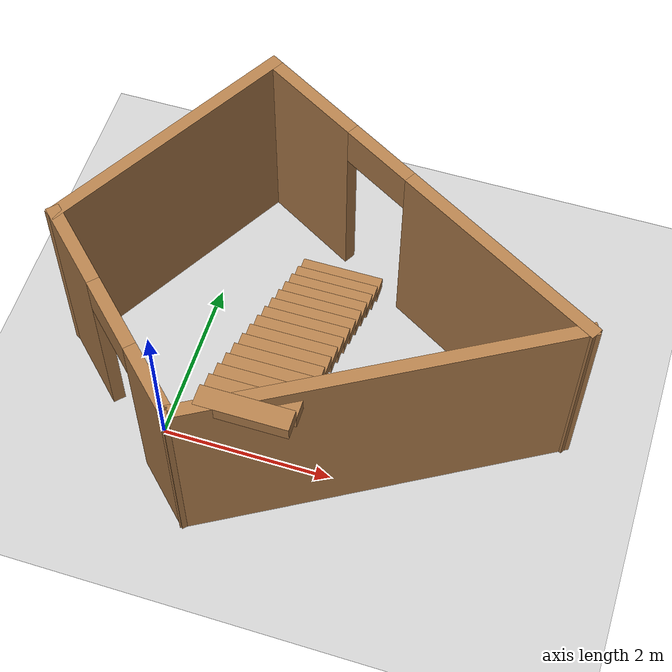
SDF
<sdf version="1.7">
 <world name="default">
  <light name="sun" type="directional">
   <pose>0 0 10 0 -0 0</pose>
   <diffuse>0.8 0.8 0.8 1</diffuse>
   <specular>0.2 0.2 0.2 1</specular>
   <attenuation>
    <range>1000</range>
    <constant>0.9</constant>
    <linear>0.01</linear>
    <quadratic>0.001</quadratic>
   </attenuation>
   <direction>-0.5 0.1 -0.9</direction>
   <spot><inner_angle>0</inner_angle><outer_angle>0</outer_angle><falloff>0</falloff></spot>
  </light>
  <model name="ground_plane">
   <static>1</static>
   <link name="link">
    <collision name="collision">
     <geometry><plane><normal>0 0 1</normal><size>100 100</size></plane></geometry>
     <surface><friction><ode><mu>100</mu><mu2>50</mu2></ode></friction></surface>
    </collision>
    <visual name="visual">
     <cast_shadows>0</cast_shadows>
     <geometry><plane><normal>0 0 1</normal><size>100 100</size></plane></geometry>
     <material>
      <script><uri>file://media/materials/scripts/gazebo.material</uri><name>Gazebo/Grey</name></script>
     </material>
    </visual>
   </link>
  </model>
  <gravity>0 0 -9.8</gravity>
  <magnetic_field>6e-06 2.3e-05 -4.2e-05</magnetic_field>
  <atmosphere type="adiabatic"/>
  <physics type="ode">
   <max_step_size>0.001</max_step_size>
   <real_time_factor>1</real_time_factor>
   <real_time_update_rate>1000</real_time_update_rate>
  </physics>
  <scene><ambient>0.4 0.4 0.4 1</ambient><background>0.7 0.7 0.7 1</background><shadows>1</shadows></scene>
  <audio><device>default</device></audio>
  <spherical_coordinates>
   <surface_model>EARTH_WGS84</surface_model>
   <latitude_deg>0</latitude_deg>
   <longitude_deg>0</longitude_deg>
   <elevation>0</elevation>
   <heading_deg>0</heading_deg>
  </spherical_coordinates>
  <model name="test_world">
   <pose>1.03395 0.173234 0 0 -0 0</pose>
   <link name="Stairs_0">
    <visual name="Stairs_0_Visual_0">
     <pose>0.296333 2.37999 0.083333 0 -0 0</pose>
     <geometry><box><size>1 0.233333 0.166667</size></box></geometry>
     <material>
      <script><uri>file://media/materials/scripts/gazebo.material</uri><name>Gazebo/Wood</name></script>
      <ambient>0.435294 0.796078 0.67451 1</ambient>
     </material>
     <meta><layer>0</layer></meta>
    </visual>
    <collision name="Stairs_0_Collision_0">
     <geometry><box><size>1 0.233333 0.166667</size></box></geometry>
     <pose>0.296333 2.37999 0.083333 0 -0 0</pose>
    </collision>
    <visual name="Stairs_0_Visual_1">
     <pose>0.296333 2.14665 0.25 0 -0 0</pose>
     <geometry><box><size>1 0.233333 0.166667</size></box></geometry>
     <material>
      <script><uri>file://media/materials/scripts/gazebo.material</uri><name>Gazebo/Wood</name></script>
      <ambient>0.435294 0.796078 0.67451 1</ambient>
     </material>
     <meta><layer>0</layer></meta>
    </visual>
    <collision name="Stairs_0_Collision_1">
     <geometry><box><size>1 0.233333 0.166667</size></box></geometry>
     <pose>0.296333 2.14665 0.25 0 -0 0</pose>
    </collision>
    <visual name="Stairs_0_Visual_2">
     <pose>0.296333 1.91332 0.416667 0 -0 0</pose>
     <geometry><box><size>1 0.233333 0.166667</size></box></geometry>
     <material>
      <script><uri>file://media/materials/scripts/gazebo.material</uri><name>Gazebo/Wood</name></script>
      <ambient>0.435294 0.796078 0.67451 1</ambient>
     </material>
     <meta><layer>0</layer></meta>
    </visual>
    <collision name="Stairs_0_Collision_2">
     <geometry><box><size>1 0.233333 0.166667</size></box></geometry>
     <pose>0.296333 1.91332 0.416667 0 -0 0</pose>
    </collision>
    <visual name="Stairs_0_Visual_3">
     <pose>0.296333 1.67999 0.583333 0 -0 0</pose>
     <geometry><box><size>1 0.233333 0.166667</size></box></geometry>
     <material>
      <script><uri>file://media/materials/scripts/gazebo.material</uri><name>Gazebo/Wood</name></script>
      <ambient>0.435294 0.796078 0.67451 1</ambient>
     </material>
     <meta><layer>0</layer></meta>
    </visual>
    <collision name="Stairs_0_Collision_3">
     <geometry><box><size>1 0.233333 0.166667</size></box></geometry>
     <pose>0.296333 1.67999 0.583333 0 -0 0</pose>
    </collision>
    <visual name="Stairs_0_Visual_4">
     <pose>0.296333 1.44665 0.75 0 -0 0</pose>
     <geometry><box><size>1 0.233333 0.166667</size></box></geometry>
     <material>
      <script><uri>file://media/materials/scripts/gazebo.material</uri><name>Gazebo/Wood</name></script>
      <ambient>0.435294 0.796078 0.67451 1</ambient>
     </material>
     <meta><layer>0</layer></meta>
    </visual>
    <collision name="Stairs_0_Collision_4">
     <geometry><box><size>1 0.233333 0.166667</size></box></geometry>
     <pose>0.296333 1.44665 0.75 0 -0 0</pose>
    </collision>
    <visual name="Stairs_0_Visual_5">
     <pose>0.296333 1.21332 0.916667 0 -0 0</pose>
     <geometry><box><size>1 0.233333 0.166667</size></box></geometry>
     <material>
      <script><uri>file://media/materials/scripts/gazebo.material</uri><name>Gazebo/Wood</name></script>
      <ambient>0.435294 0.796078 0.67451 1</ambient>
     </material>
     <meta><layer>0</layer></meta>
    </visual>
    <collision name="Stairs_0_Collision_5">
     <geometry><box><size>1 0.233333 0.166667</size></box></geometry>
     <pose>0.296333 1.21332 0.916667 0 -0 0</pose>
    </collision>
    <visual name="Stairs_0_Visual_6">
     <pose>0.296333 0.979988 1.08333 0 -0 0</pose>
     <geometry><box><size>1 0.233333 0.166667</size></box></geometry>
     <material>
      <script><uri>file://media/materials/scripts/gazebo.material</uri><name>Gazebo/Wood</name></script>
      <ambient>0.435294 0.796078 0.67451 1</ambient>
     </material>
     <meta><layer>0</layer></meta>
    </visual>
    <collision name="Stairs_0_Collision_6">
     <geometry><box><size>1 0.233333 0.166667</size></box></geometry>
     <pose>0.296333 0.979988 1.08333 0 -0 0</pose>
    </collision>
    <visual name="Stairs_0_Visual_7">
     <pose>0.296333 0.746654 1.25 0 -0 0</pose>
     <geometry><box><size>1 0.233333 0.166667</size></box></geometry>
     <material>
      <script><uri>file://media/materials/scripts/gazebo.material</uri><name>Gazebo/Wood</name></script>
      <ambient>0.435294 0.796078 0.67451 1</ambient>
     </material>
     <meta><layer>0</layer></meta>
    </visual>
    <collision name="Stairs_0_Collision_7">
     <geometry><box><size>1 0.233333 0.166667</size></box></geometry>
     <pose>0.296333 0.746654 1.25 0 -0 0</pose>
    </collision>
    <visual name="Stairs_0_Visual_8">
     <pose>0.296333 0.51332 1.41667 0 -0 0</pose>
     <geometry><box><size>1 0.233333 0.166667</size></box></geometry>
     <material>
      <script><uri>file://media/materials/scripts/gazebo.material</uri><name>Gazebo/Wood</name></script>
      <ambient>0.435294 0.796078 0.67451 1</ambient>
     </material>
     <meta><layer>0</layer></meta>
    </visual>
    <collision name="Stairs_0_Collision_8">
     <geometry><box><size>1 0.233333 0.166667</size></box></geometry>
     <pose>0.296333 0.51332 1.41667 0 -0 0</pose>
    </collision>
    <visual name="Stairs_0_Visual_9">
     <pose>0.296333 0.279987 1.58333 0 -0 0</pose>
     <geometry><box><size>1 0.233333 0.166667</size></box></geometry>
     <material>
      <script><uri>file://media/materials/scripts/gazebo.material</uri><name>Gazebo/Wood</name></script>
      <ambient>0.435294 0.796078 0.67451 1</ambient>
     </material>
     <meta><layer>0</layer></meta>
    </visual>
    <collision name="Stairs_0_Collision_9">
     <geometry><box><size>1 0.233333 0.166667</size></box></geometry>
     <pose>0.296333 0.279987 1.58333 0 -0 0</pose>
    </collision>
    <visual name="Stairs_0_Visual_10">
     <pose>0.296333 0.046654 1.75 0 -0 0</pose>
     <geometry><box><size>1 0.233333 0.166667</size></box></geometry>
     <material>
      <script><uri>file://media/materials/scripts/gazebo.material</uri><name>Gazebo/Wood</name></script>
      <ambient>0.435294 0.796078 0.67451 1</ambient>
     </material>
     <meta><layer>0</layer></meta>
    </visual>
    <collision name="Stairs_0_Collision_10">
     <geometry><box><size>1 0.233333 0.166667</size></box></geometry>
     <pose>0.296333 0.046654 1.75 0 -0 0</pose>
    </collision>
    <visual name="Stairs_0_Visual_11">
     <pose>0.296333 -0.186679 1.91667 0 -0 0</pose>
     <geometry><box><size>1 0.233333 0.166667</size></box></geometry>
     <material>
      <script><uri>file://media/materials/scripts/gazebo.material</uri><name>Gazebo/Wood</name></script>
      <ambient>0.435294 0.796078 0.67451 1</ambient>
     </material>
     <meta><layer>0</layer></meta>
    </visual>
    <collision name="Stairs_0_Collision_11">
     <geometry><box><size>1 0.233333 0.166667</size></box></geometry>
     <pose>0.296333 -0.186679 1.91667 0 -0 0</pose>
    </collision>
    <visual name="Stairs_0_Visual_12">
     <pose>0.296333 -0.420013 2.08333 0 -0 0</pose>
     <geometry><box><size>1 0.233333 0.166667</size></box></geometry>
     <material>
      <script><uri>file://media/materials/scripts/gazebo.material</uri><name>Gazebo/Wood</name></script>
      <ambient>0.435294 0.796078 0.67451 1</ambient>
     </material>
     <meta><layer>0</layer></meta>
    </visual>
    <collision name="Stairs_0_Collision_12">
     <geometry><box><size>1 0.233333 0.166667</size></box></geometry>
     <pose>0.296333 -0.420013 2.08333 0 -0 0</pose>
    </collision>
    <visual name="Stairs_0_Visual_13">
     <pose>0.296333 -0.653346 2.25 0 -0 0</pose>
     <geometry><box><size>1 0.233333 0.166667</size></box></geometry>
     <material>
      <script><uri>file://media/materials/scripts/gazebo.material</uri><name>Gazebo/Wood</name></script>
      <ambient>0.435294 0.796078 0.67451 1</ambient>
     </material>
     <meta><layer>0</layer></meta>
    </visual>
    <collision name="Stairs_0_Collision_13">
     <geometry><box><size>1 0.233333 0.166667</size></box></geometry>
     <pose>0.296333 -0.653346 2.25 0 -0 0</pose>
    </collision>
    <visual name="Stairs_0_Visual_14">
     <pose>0.296333 -0.886679 2.41667 0 -0 0</pose>
     <geometry><box><size>1 0.233333 0.166667</size></box></geometry>
     <material>
      <script><uri>file://media/materials/scripts/gazebo.material</uri><name>Gazebo/Wood</name></script>
      <ambient>0.435294 0.796078 0.67451 1</ambient>
     </material>
     <meta><layer>0</layer></meta>
    </visual>
    <collision name="Stairs_0_Collision_14">
     <geometry><box><size>1 0.233333 0.166667</size></box></geometry>
     <pose>0.296333 -0.886679 2.41667 0 -0 0</pose>
    </collision>
   </link>
   <link name="Wall_0">
    <collision name="Wall_0_Collision">
     <geometry><box><size>3.25 0.15 2.5</size></box></geometry>
     <pose>0 0 1.25 0 -0 0</pose>
    </collision>
    <visual name="Wall_0_Visual">
     <pose>0 0 1.25 0 -0 0</pose>
     <geometry><box><size>3.25 0.15 2.5</size></box></geometry>
     <material>
      <script><uri>file://media/materials/scripts/gazebo.material</uri><name>Gazebo/Wood</name></script>
      <ambient>1 1 1 1</ambient>
     </material>
     <meta><layer>0</layer></meta>
    </visual>
    <pose>-1.61995 2.09667 0 0 -0 1.0472</pose>
   </link>
   <link name="Wall_2">
    <pose>1.25516 2.22651 0 0 -0 -0.523599</pose>
    <visual name="Wall_2_Visual_0">
     <pose>-1.80339 0 1.25 0 -0 0</pose>
     <geometry><box><size>1.39322 0.15 2.5</size></box></geometry>
     <material>
      <script><uri>file://media/materials/scripts/gazebo.material</uri><name>Gazebo/Wood</name></script>
      <ambient>0.435294 0.796078 0.67451 1</ambient>
     </material>
     <meta><layer>0</layer></meta>
    </visual>
    <collision name="Wall_2_Collision_0">
     <geometry><box><size>1.39322 0.15 2.5</size></box></geometry>
     <pose>-1.80339 0 1.25 0 -0 0</pose>
    </collision>
    <visual name="Wall_2_Visual_1">
     <pose>1.14661 0 1.25 0 -0 0</pose>
     <geometry><box><size>2.70677 0.15 2.5</size></box></geometry>
     <material>
      <script><uri>file://media/materials/scripts/gazebo.material</uri><name>Gazebo/Wood</name></script>
      <ambient>0.435294 0.796078 0.67451 1</ambient>
     </material>
     <meta><layer>0</layer></meta>
    </visual>
    <collision name="Wall_2_Collision_1">
     <geometry><box><size>2.70677 0.15 2.5</size></box></geometry>
     <pose>1.14661 0 1.25 0 -0 0</pose>
    </collision>
    <visual name="Wall_2_Visual_2">
     <pose>-0.656775 0 2.25 0 -0 0</pose>
     <geometry><box><size>0.9 0.15 0.5</size></box></geometry>
     <material>
      <script><uri>file://media/materials/scripts/gazebo.material</uri><name>Gazebo/Wood</name></script>
      <ambient>0.435294 0.796078 0.67451 1</ambient>
     </material>
     <meta><layer>0</layer></meta>
    </visual>
    <collision name="Wall_2_Collision_2">
     <geometry><box><size>0.9 0.15 0.5</size></box></geometry>
     <pose>-0.656775 0 2.25 0 -0 0</pose>
    </collision>
   </link>
   <link name="Wall_3">
    <collision name="Wall_3_Collision">
     <geometry><box><size>4.5 0.15 2.5</size></box></geometry>
     <pose>0 0 1.25 0 -0 0</pose>
    </collision>
    <visual name="Wall_3_Visual">
     <pose>0 0 1.25 0 -0 0</pose>
     <geometry><box><size>4.5 0.15 2.5</size></box></geometry>
     <material>
      <script><uri>file://media/materials/scripts/gazebo.material</uri><name>Gazebo/Wood</name></script>
      <ambient>1 1 1 1</ambient>
     </material>
     <meta><layer>0</layer></meta>
    </visual>
    <pose>1.47167 -0.073487 0 0 -0 -2.61799</pose>
   </link>
   <link name="Wall_4">
    <pose>-1.40344 -0.203326 0 0 -0 2.37356</pose>
    <visual name="Wall_4_Visual_0">
     <pose>-0.985017 0 1.25 0 -0 0</pose>
     <geometry><box><size>0.936919 0.15 2.5</size></box></geometry>
     <material>
      <script><uri>file://media/materials/scripts/gazebo.material</uri><name>Gazebo/Wood</name></script>
      <ambient>1 1 1 1</ambient>
     </material>
     <meta><layer>0</layer></meta>
    </visual>
    <collision name="Wall_4_Collision_0">
     <geometry><box><size>0.936919 0.15 2.5</size></box></geometry>
     <pose>-0.985017 0 1.25 0 -0 0</pose>
    </collision>
    <visual name="Wall_4_Visual_1">
     <pose>0.91846 0 1.25 0 -0 0</pose>
     <geometry><box><size>1.07004 0.15 2.5</size></box></geometry>
     <material>
      <script><uri>file://media/materials/scripts/gazebo.material</uri><name>Gazebo/Wood</name></script>
      <ambient>1 1 1 1</ambient>
     </material>
     <meta><layer>0</layer></meta>
    </visual>
    <collision name="Wall_4_Collision_1">
     <geometry><box><size>1.07004 0.15 2.5</size></box></geometry>
     <pose>0.91846 0 1.25 0 -0 0</pose>
    </collision>
    <visual name="Wall_4_Visual_2">
     <pose>-0.066558 0 2.25 0 -0 0</pose>
     <geometry><box><size>0.9 0.15 0.5</size></box></geometry>
     <material>
      <script><uri>file://media/materials/scripts/gazebo.material</uri><name>Gazebo/Wood</name></script>
      <ambient>1 1 1 1</ambient>
     </material>
     <meta><layer>0</layer></meta>
    </visual>
    <collision name="Wall_4_Collision_2">
     <geometry><box><size>0.9 0.15 0.5</size></box></geometry>
     <pose>-0.066558 0 2.25 0 -0 0</pose>
    </collision>
   </link>
   <static>1</static>
  </model>
 </world>
</sdf>
